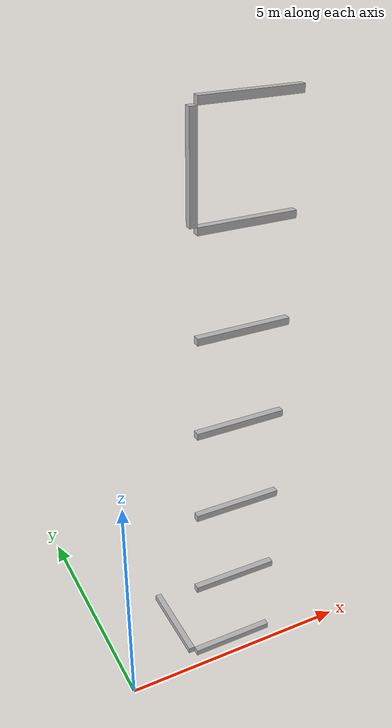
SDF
<sdf version="1.7">
 <world name="default">
  <model name="orthogonal_747_2.000.15_TS">
   <static>1</static>
   <link name="x_link_0_3_4">
    <inertial>
     <mass>1</mass>
     <inertia>
      <ixx>0.166667</ixx>
      <ixy>0</ixy>
      <ixz>0</ixz>
      <iyy>0.166667</iyy>
      <iyz>0</iyz>
      <izz>0.166667</izz>
     </inertia>
    </inertial>
    <pose>9.675 6.45 1.075 0 -0 0</pose>
    <visual name="visual_0">
     <laser_retro>568</laser_retro>
     <geometry><box><size>2 1e-06 0.15</size></box></geometry>
     <material>
      <script><name>Gazebo/Grey</name><uri>file://media/materials/scripts/gazebo.material</uri></script>
      <shader type="pixel"><normal_map>__default__</normal_map></shader>
      <ambient>0.678 0.498 0.659 1</ambient>
      <diffuse>0.7 0.7 0.7 1</diffuse>
      <specular>0.01 0.01 0.01 1</specular>
      <emissive>0 0 0 1</emissive>
     </material>
     <pose>0 -0.075 0 0 -0 0</pose>
     <transparency>1</transparency>
    </visual>
    <visual name="visual_1">
     <laser_retro>569</laser_retro>
     <geometry><box><size>2 1e-06 0.15</size></box></geometry>
     <material>
      <script><name>Gazebo/Grey</name><uri>file://media/materials/scripts/gazebo.material</uri></script>
      <shader type="pixel"><normal_map>__default__</normal_map></shader>
      <ambient>0.447 0.624 0.812 1</ambient>
      <diffuse>0.7 0.7 0.7 1</diffuse>
      <specular>0.01 0.01 0.01 1</specular>
      <emissive>0 0 0 1</emissive>
     </material>
     <pose>0 0.075 0 0 -0 0</pose>
     <transparency>1</transparency>
    </visual>
    <visual name="visual_2">
     <laser_retro>570</laser_retro>
     <geometry><box><size>2 0.15 1e-06</size></box></geometry>
     <material>
      <script><name>Gazebo/Grey</name><uri>file://media/materials/scripts/gazebo.material</uri></script>
      <shader type="pixel"><normal_map>__default__</normal_map></shader>
      <ambient>0.988 0.686 0.243 1</ambient>
      <diffuse>0.7 0.7 0.7 1</diffuse>
      <specular>0.01 0.01 0.01 1</specular>
      <emissive>0 0 0 1</emissive>
     </material>
     <pose>0 0 -0.075 0 -0 0</pose>
     <transparency>1</transparency>
    </visual>
    <visual name="visual_3">
     <laser_retro>571</laser_retro>
     <geometry><box><size>1e-06 0.15 0.15</size></box></geometry>
     <material>
      <script><name>Gazebo/Grey</name><uri>file://media/materials/scripts/gazebo.material</uri></script>
      <shader type="pixel"><normal_map>__default__</normal_map></shader>
      <ambient>0.988 0.914 0.31 1</ambient>
      <diffuse>0.7 0.7 0.7 1</diffuse>
      <specular>0.01 0.01 0.01 1</specular>
      <emissive>0 0 0 1</emissive>
     </material>
     <pose>1 0 0 0 -0 0</pose>
     <transparency>1</transparency>
    </visual>
    <visual name="visual_4">
     <laser_retro>572</laser_retro>
     <geometry><box><size>2 0.15 1e-06</size></box></geometry>
     <material>
      <script><name>Gazebo/Grey</name><uri>file://media/materials/scripts/gazebo.material</uri></script>
      <shader type="pixel"><normal_map>__default__</normal_map></shader>
      <ambient>0.937 0.161 0.161 1</ambient>
      <diffuse>0.7 0.7 0.7 1</diffuse>
      <specular>0.01 0.01 0.01 1</specular>
      <emissive>0 0 0 1</emissive>
     </material>
     <pose>0 0 0.075 0 -0 0</pose>
     <transparency>1</transparency>
    </visual>
    <visual name="visual_5">
     <laser_retro>573</laser_retro>
     <geometry><box><size>1e-06 0.15 0.15</size></box></geometry>
     <material>
      <script><name>Gazebo/Grey</name><uri>file://media/materials/scripts/gazebo.material</uri></script>
      <shader type="pixel"><normal_map>__default__</normal_map></shader>
      <ambient>0.541 0.886 0.204 1</ambient>
      <diffuse>0.7 0.7 0.7 1</diffuse>
      <specular>0.01 0.01 0.01 1</specular>
      <emissive>0 0 0 1</emissive>
     </material>
     <pose>-1 0 0 0 -0 0</pose>
     <transparency>1</transparency>
    </visual>
    <visual name="visual_texture">
     <geometry><box><size>1.9998 0.149985 0.149985</size></box></geometry>
     <material>
      <script>
       <uri>model://BASE_MODELS/simple_block_v2_textured/materials/scripts</uri>
       <uri>model://BASE_MODELS/simple_block_v2_textured/materials/textures</uri>
       <name>metal</name>
      </script>
     </material>
     <laser_retro>574</laser_retro>
    </visual>
    <collision name="collision">
     <geometry><box><size>2 0.15 0.15</size></box></geometry>
     <surface>
      <friction>
       <ode><mu>1</mu><mu2>1</mu2><fdir1>0 0 0</fdir1><slip1>0</slip1><slip2>0</slip2></ode>
       <torsional>
        <coefficient>1</coefficient>
        <patch_radius>0</patch_radius>
        <surface_radius>0</surface_radius>
        <use_patch_radius>1</use_patch_radius>
        <ode><slip>0</slip></ode>
       </torsional>
      </friction>
      <bounce><restitution_coefficient>0</restitution_coefficient><threshold>1e+06</threshold></bounce>
      <contact>
       <collide_without_contact>0</collide_without_contact>
       <collide_without_contact_bitmask>1</collide_without_contact_bitmask>
       <collide_bitmask>1</collide_bitmask>
       <ode>
        <soft_cfm>0</soft_cfm>
        <soft_erp>0.2</soft_erp>
        <kp>1e+13</kp>
        <kd>1</kd>
        <max_vel>0.01</max_vel>
        <min_depth>0</min_depth>
       </ode>
       <bullet>
        <split_impulse>1</split_impulse>
        <split_impulse_penetration_threshold>-0.01</split_impulse_penetration_threshold>
        <soft_cfm>0</soft_cfm>
        <soft_erp>0.2</soft_erp>
        <kp>1e+13</kp>
        <kd>1</kd>
       </bullet>
      </contact>
     </surface>
    </collision>
   </link>
   <link name="y_link_0_3_4">
    <inertial>
     <mass>1</mass>
     <inertia>
      <ixx>0.166667</ixx>
      <ixy>0</ixy>
      <ixz>0</ixz>
      <iyy>0.166667</iyy>
      <iyz>0</iyz>
      <izz>0.166667</izz>
     </inertia>
    </inertial>
    <pose>8.6 7.525 1.075 0 -0 0</pose>
    <visual name="visual_0">
     <laser_retro>575</laser_retro>
     <geometry><box><size>0.15 1e-06 0.15</size></box></geometry>
     <material>
      <script><name>Gazebo/Grey</name><uri>file://media/materials/scripts/gazebo.material</uri></script>
      <shader type="pixel"><normal_map>__default__</normal_map></shader>
      <ambient>0.678 0.498 0.659 1</ambient>
      <diffuse>0.7 0.7 0.7 1</diffuse>
      <specular>0.01 0.01 0.01 1</specular>
      <emissive>0 0 0 1</emissive>
     </material>
     <pose>0 -1 0 0 -0 0</pose>
     <transparency>1</transparency>
    </visual>
    <visual name="visual_1">
     <laser_retro>576</laser_retro>
     <geometry><box><size>0.15 1e-06 0.15</size></box></geometry>
     <material>
      <script><name>Gazebo/Grey</name><uri>file://media/materials/scripts/gazebo.material</uri></script>
      <shader type="pixel"><normal_map>__default__</normal_map></shader>
      <ambient>0.447 0.624 0.812 1</ambient>
      <diffuse>0.7 0.7 0.7 1</diffuse>
      <specular>0.01 0.01 0.01 1</specular>
      <emissive>0 0 0 1</emissive>
     </material>
     <pose>0 1 0 0 -0 0</pose>
     <transparency>1</transparency>
    </visual>
    <visual name="visual_2">
     <laser_retro>577</laser_retro>
     <geometry><box><size>0.15 2 1e-06</size></box></geometry>
     <material>
      <script><name>Gazebo/Grey</name><uri>file://media/materials/scripts/gazebo.material</uri></script>
      <shader type="pixel"><normal_map>__default__</normal_map></shader>
      <ambient>0.988 0.686 0.243 1</ambient>
      <diffuse>0.7 0.7 0.7 1</diffuse>
      <specular>0.01 0.01 0.01 1</specular>
      <emissive>0 0 0 1</emissive>
     </material>
     <pose>0 0 -0.075 0 -0 0</pose>
     <transparency>1</transparency>
    </visual>
    <visual name="visual_3">
     <laser_retro>578</laser_retro>
     <geometry><box><size>1e-06 2 0.15</size></box></geometry>
     <material>
      <script><name>Gazebo/Grey</name><uri>file://media/materials/scripts/gazebo.material</uri></script>
      <shader type="pixel"><normal_map>__default__</normal_map></shader>
      <ambient>0.988 0.914 0.31 1</ambient>
      <diffuse>0.7 0.7 0.7 1</diffuse>
      <specular>0.01 0.01 0.01 1</specular>
      <emissive>0 0 0 1</emissive>
     </material>
     <pose>0.075 0 0 0 -0 0</pose>
     <transparency>1</transparency>
    </visual>
    <visual name="visual_4">
     <laser_retro>579</laser_retro>
     <geometry><box><size>0.15 2 1e-06</size></box></geometry>
     <material>
      <script><name>Gazebo/Grey</name><uri>file://media/materials/scripts/gazebo.material</uri></script>
      <shader type="pixel"><normal_map>__default__</normal_map></shader>
      <ambient>0.937 0.161 0.161 1</ambient>
      <diffuse>0.7 0.7 0.7 1</diffuse>
      <specular>0.01 0.01 0.01 1</specular>
      <emissive>0 0 0 1</emissive>
     </material>
     <pose>0 0 0.075 0 -0 0</pose>
     <transparency>1</transparency>
    </visual>
    <visual name="visual_5">
     <laser_retro>580</laser_retro>
     <geometry><box><size>1e-06 2 0.15</size></box></geometry>
     <material>
      <script><name>Gazebo/Grey</name><uri>file://media/materials/scripts/gazebo.material</uri></script>
      <shader type="pixel"><normal_map>__default__</normal_map></shader>
      <ambient>0.541 0.886 0.204 1</ambient>
      <diffuse>0.7 0.7 0.7 1</diffuse>
      <specular>0.01 0.01 0.01 1</specular>
      <emissive>0 0 0 1</emissive>
     </material>
     <pose>-0.075 0 0 0 -0 0</pose>
     <transparency>1</transparency>
    </visual>
    <visual name="visual_texture">
     <geometry><box><size>0.149985 1.9998 0.149985</size></box></geometry>
     <material>
      <script>
       <uri>model://BASE_MODELS/simple_block_v2_textured/materials/scripts</uri>
       <uri>model://BASE_MODELS/simple_block_v2_textured/materials/textures</uri>
       <name>metal</name>
      </script>
     </material>
     <laser_retro>581</laser_retro>
    </visual>
    <collision name="collision">
     <geometry><box><size>0.15 2 0.15</size></box></geometry>
     <surface>
      <friction>
       <ode><mu>1</mu><mu2>1</mu2><fdir1>0 0 0</fdir1><slip1>0</slip1><slip2>0</slip2></ode>
       <torsional>
        <coefficient>1</coefficient>
        <patch_radius>0</patch_radius>
        <surface_radius>0</surface_radius>
        <use_patch_radius>1</use_patch_radius>
        <ode><slip>0</slip></ode>
       </torsional>
      </friction>
      <bounce><restitution_coefficient>0</restitution_coefficient><threshold>1e+06</threshold></bounce>
      <contact>
       <collide_without_contact>0</collide_without_contact>
       <collide_without_contact_bitmask>1</collide_without_contact_bitmask>
       <collide_bitmask>1</collide_bitmask>
       <ode>
        <soft_cfm>0</soft_cfm>
        <soft_erp>0.2</soft_erp>
        <kp>1e+13</kp>
        <kd>1</kd>
        <max_vel>0.01</max_vel>
        <min_depth>0</min_depth>
       </ode>
       <bullet>
        <split_impulse>1</split_impulse>
        <split_impulse_penetration_threshold>-0.01</split_impulse_penetration_threshold>
        <soft_cfm>0</soft_cfm>
        <soft_erp>0.2</soft_erp>
        <kp>1e+13</kp>
        <kd>1</kd>
       </bullet>
      </contact>
     </surface>
    </collision>
   </link>
   <link name="x_link_1_3_4">
    <inertial>
     <mass>1</mass>
     <inertia>
      <ixx>0.166667</ixx>
      <ixy>0</ixy>
      <ixz>0</ixz>
      <iyy>0.166667</iyy>
      <iyz>0</iyz>
      <izz>0.166667</izz>
     </inertia>
    </inertial>
    <pose>9.675 6.45 3.225 0 -0 0</pose>
    <visual name="visual_0">
     <laser_retro>1408</laser_retro>
     <geometry><box><size>2 1e-06 0.15</size></box></geometry>
     <material>
      <script><name>Gazebo/Grey</name><uri>file://media/materials/scripts/gazebo.material</uri></script>
      <shader type="pixel"><normal_map>__default__</normal_map></shader>
      <ambient>0.678 0.498 0.659 1</ambient>
      <diffuse>0.7 0.7 0.7 1</diffuse>
      <specular>0.01 0.01 0.01 1</specular>
      <emissive>0 0 0 1</emissive>
     </material>
     <pose>0 -0.075 0 0 -0 0</pose>
     <transparency>1</transparency>
    </visual>
    <visual name="visual_1">
     <laser_retro>1409</laser_retro>
     <geometry><box><size>2 1e-06 0.15</size></box></geometry>
     <material>
      <script><name>Gazebo/Grey</name><uri>file://media/materials/scripts/gazebo.material</uri></script>
      <shader type="pixel"><normal_map>__default__</normal_map></shader>
      <ambient>0.447 0.624 0.812 1</ambient>
      <diffuse>0.7 0.7 0.7 1</diffuse>
      <specular>0.01 0.01 0.01 1</specular>
      <emissive>0 0 0 1</emissive>
     </material>
     <pose>0 0.075 0 0 -0 0</pose>
     <transparency>1</transparency>
    </visual>
    <visual name="visual_2">
     <laser_retro>1410</laser_retro>
     <geometry><box><size>2 0.15 1e-06</size></box></geometry>
     <material>
      <script><name>Gazebo/Grey</name><uri>file://media/materials/scripts/gazebo.material</uri></script>
      <shader type="pixel"><normal_map>__default__</normal_map></shader>
      <ambient>0.988 0.686 0.243 1</ambient>
      <diffuse>0.7 0.7 0.7 1</diffuse>
      <specular>0.01 0.01 0.01 1</specular>
      <emissive>0 0 0 1</emissive>
     </material>
     <pose>0 0 -0.075 0 -0 0</pose>
     <transparency>1</transparency>
    </visual>
    <visual name="visual_3">
     <laser_retro>1411</laser_retro>
     <geometry><box><size>1e-06 0.15 0.15</size></box></geometry>
     <material>
      <script><name>Gazebo/Grey</name><uri>file://media/materials/scripts/gazebo.material</uri></script>
      <shader type="pixel"><normal_map>__default__</normal_map></shader>
      <ambient>0.988 0.914 0.31 1</ambient>
      <diffuse>0.7 0.7 0.7 1</diffuse>
      <specular>0.01 0.01 0.01 1</specular>
      <emissive>0 0 0 1</emissive>
     </material>
     <pose>1 0 0 0 -0 0</pose>
     <transparency>1</transparency>
    </visual>
    <visual name="visual_4">
     <laser_retro>1412</laser_retro>
     <geometry><box><size>2 0.15 1e-06</size></box></geometry>
     <material>
      <script><name>Gazebo/Grey</name><uri>file://media/materials/scripts/gazebo.material</uri></script>
      <shader type="pixel"><normal_map>__default__</normal_map></shader>
      <ambient>0.937 0.161 0.161 1</ambient>
      <diffuse>0.7 0.7 0.7 1</diffuse>
      <specular>0.01 0.01 0.01 1</specular>
      <emissive>0 0 0 1</emissive>
     </material>
     <pose>0 0 0.075 0 -0 0</pose>
     <transparency>1</transparency>
    </visual>
    <visual name="visual_5">
     <laser_retro>1413</laser_retro>
     <geometry><box><size>1e-06 0.15 0.15</size></box></geometry>
     <material>
      <script><name>Gazebo/Grey</name><uri>file://media/materials/scripts/gazebo.material</uri></script>
      <shader type="pixel"><normal_map>__default__</normal_map></shader>
      <ambient>0.541 0.886 0.204 1</ambient>
      <diffuse>0.7 0.7 0.7 1</diffuse>
      <specular>0.01 0.01 0.01 1</specular>
      <emissive>0 0 0 1</emissive>
     </material>
     <pose>-1 0 0 0 -0 0</pose>
     <transparency>1</transparency>
    </visual>
    <visual name="visual_texture">
     <geometry><box><size>1.9998 0.149985 0.149985</size></box></geometry>
     <material>
      <script>
       <uri>model://BASE_MODELS/simple_block_v2_textured/materials/scripts</uri>
       <uri>model://BASE_MODELS/simple_block_v2_textured/materials/textures</uri>
       <name>metal</name>
      </script>
     </material>
     <laser_retro>1414</laser_retro>
    </visual>
    <collision name="collision">
     <geometry><box><size>2 0.15 0.15</size></box></geometry>
     <surface>
      <friction>
       <ode><mu>1</mu><mu2>1</mu2><fdir1>0 0 0</fdir1><slip1>0</slip1><slip2>0</slip2></ode>
       <torsional>
        <coefficient>1</coefficient>
        <patch_radius>0</patch_radius>
        <surface_radius>0</surface_radius>
        <use_patch_radius>1</use_patch_radius>
        <ode><slip>0</slip></ode>
       </torsional>
      </friction>
      <bounce><restitution_coefficient>0</restitution_coefficient><threshold>1e+06</threshold></bounce>
      <contact>
       <collide_without_contact>0</collide_without_contact>
       <collide_without_contact_bitmask>1</collide_without_contact_bitmask>
       <collide_bitmask>1</collide_bitmask>
       <ode>
        <soft_cfm>0</soft_cfm>
        <soft_erp>0.2</soft_erp>
        <kp>1e+13</kp>
        <kd>1</kd>
        <max_vel>0.01</max_vel>
        <min_depth>0</min_depth>
       </ode>
       <bullet>
        <split_impulse>1</split_impulse>
        <split_impulse_penetration_threshold>-0.01</split_impulse_penetration_threshold>
        <soft_cfm>0</soft_cfm>
        <soft_erp>0.2</soft_erp>
        <kp>1e+13</kp>
        <kd>1</kd>
       </bullet>
      </contact>
     </surface>
    </collision>
   </link>
   <link name="x_link_2_3_4">
    <inertial>
     <mass>1</mass>
     <inertia>
      <ixx>0.166667</ixx>
      <ixy>0</ixy>
      <ixz>0</ixz>
      <iyy>0.166667</iyy>
      <iyz>0</iyz>
      <izz>0.166667</izz>
     </inertia>
    </inertial>
    <pose>9.675 6.45 5.375 0 -0 0</pose>
    <visual name="visual_0">
     <laser_retro>2311</laser_retro>
     <geometry><box><size>2 1e-06 0.15</size></box></geometry>
     <material>
      <script><name>Gazebo/Grey</name><uri>file://media/materials/scripts/gazebo.material</uri></script>
      <shader type="pixel"><normal_map>__default__</normal_map></shader>
      <ambient>0.678 0.498 0.659 1</ambient>
      <diffuse>0.7 0.7 0.7 1</diffuse>
      <specular>0.01 0.01 0.01 1</specular>
      <emissive>0 0 0 1</emissive>
     </material>
     <pose>0 -0.075 0 0 -0 0</pose>
     <transparency>1</transparency>
    </visual>
    <visual name="visual_1">
     <laser_retro>2312</laser_retro>
     <geometry><box><size>2 1e-06 0.15</size></box></geometry>
     <material>
      <script><name>Gazebo/Grey</name><uri>file://media/materials/scripts/gazebo.material</uri></script>
      <shader type="pixel"><normal_map>__default__</normal_map></shader>
      <ambient>0.447 0.624 0.812 1</ambient>
      <diffuse>0.7 0.7 0.7 1</diffuse>
      <specular>0.01 0.01 0.01 1</specular>
      <emissive>0 0 0 1</emissive>
     </material>
     <pose>0 0.075 0 0 -0 0</pose>
     <transparency>1</transparency>
    </visual>
    <visual name="visual_2">
     <laser_retro>2313</laser_retro>
     <geometry><box><size>2 0.15 1e-06</size></box></geometry>
     <material>
      <script><name>Gazebo/Grey</name><uri>file://media/materials/scripts/gazebo.material</uri></script>
      <shader type="pixel"><normal_map>__default__</normal_map></shader>
      <ambient>0.988 0.686 0.243 1</ambient>
      <diffuse>0.7 0.7 0.7 1</diffuse>
      <specular>0.01 0.01 0.01 1</specular>
      <emissive>0 0 0 1</emissive>
     </material>
     <pose>0 0 -0.075 0 -0 0</pose>
     <transparency>1</transparency>
    </visual>
    <visual name="visual_3">
     <laser_retro>2314</laser_retro>
     <geometry><box><size>1e-06 0.15 0.15</size></box></geometry>
     <material>
      <script><name>Gazebo/Grey</name><uri>file://media/materials/scripts/gazebo.material</uri></script>
      <shader type="pixel"><normal_map>__default__</normal_map></shader>
      <ambient>0.988 0.914 0.31 1</ambient>
      <diffuse>0.7 0.7 0.7 1</diffuse>
      <specular>0.01 0.01 0.01 1</specular>
      <emissive>0 0 0 1</emissive>
     </material>
     <pose>1 0 0 0 -0 0</pose>
     <transparency>1</transparency>
    </visual>
    <visual name="visual_4">
     <laser_retro>2315</laser_retro>
     <geometry><box><size>2 0.15 1e-06</size></box></geometry>
     <material>
      <script><name>Gazebo/Grey</name><uri>file://media/materials/scripts/gazebo.material</uri></script>
      <shader type="pixel"><normal_map>__default__</normal_map></shader>
      <ambient>0.937 0.161 0.161 1</ambient>
      <diffuse>0.7 0.7 0.7 1</diffuse>
      <specular>0.01 0.01 0.01 1</specular>
      <emissive>0 0 0 1</emissive>
     </material>
     <pose>0 0 0.075 0 -0 0</pose>
     <transparency>1</transparency>
    </visual>
    <visual name="visual_5">
     <laser_retro>2316</laser_retro>
     <geometry><box><size>1e-06 0.15 0.15</size></box></geometry>
     <material>
      <script><name>Gazebo/Grey</name><uri>file://media/materials/scripts/gazebo.material</uri></script>
      <shader type="pixel"><normal_map>__default__</normal_map></shader>
      <ambient>0.541 0.886 0.204 1</ambient>
      <diffuse>0.7 0.7 0.7 1</diffuse>
      <specular>0.01 0.01 0.01 1</specular>
      <emissive>0 0 0 1</emissive>
     </material>
     <pose>-1 0 0 0 -0 0</pose>
     <transparency>1</transparency>
    </visual>
    <visual name="visual_texture">
     <geometry><box><size>1.9998 0.149985 0.149985</size></box></geometry>
     <material>
      <script>
       <uri>model://BASE_MODELS/simple_block_v2_textured/materials/scripts</uri>
       <uri>model://BASE_MODELS/simple_block_v2_textured/materials/textures</uri>
       <name>metal</name>
      </script>
     </material>
     <laser_retro>2317</laser_retro>
    </visual>
    <collision name="collision">
     <geometry><box><size>2 0.15 0.15</size></box></geometry>
     <surface>
      <friction>
       <ode><mu>1</mu><mu2>1</mu2><fdir1>0 0 0</fdir1><slip1>0</slip1><slip2>0</slip2></ode>
       <torsional>
        <coefficient>1</coefficient>
        <patch_radius>0</patch_radius>
        <surface_radius>0</surface_radius>
        <use_patch_radius>1</use_patch_radius>
        <ode><slip>0</slip></ode>
       </torsional>
      </friction>
      <bounce><restitution_coefficient>0</restitution_coefficient><threshold>1e+06</threshold></bounce>
      <contact>
       <collide_without_contact>0</collide_without_contact>
       <collide_without_contact_bitmask>1</collide_without_contact_bitmask>
       <collide_bitmask>1</collide_bitmask>
       <ode>
        <soft_cfm>0</soft_cfm>
        <soft_erp>0.2</soft_erp>
        <kp>1e+13</kp>
        <kd>1</kd>
        <max_vel>0.01</max_vel>
        <min_depth>0</min_depth>
       </ode>
       <bullet>
        <split_impulse>1</split_impulse>
        <split_impulse_penetration_threshold>-0.01</split_impulse_penetration_threshold>
        <soft_cfm>0</soft_cfm>
        <soft_erp>0.2</soft_erp>
        <kp>1e+13</kp>
        <kd>1</kd>
       </bullet>
      </contact>
     </surface>
    </collision>
   </link>
   <link name="x_link_3_3_4">
    <inertial>
     <mass>1</mass>
     <inertia>
      <ixx>0.166667</ixx>
      <ixy>0</ixy>
      <ixz>0</ixz>
      <iyy>0.166667</iyy>
      <iyz>0</iyz>
      <izz>0.166667</izz>
     </inertia>
    </inertial>
    <pose>9.675 6.45 7.525 0 -0 0</pose>
    <visual name="visual_0">
     <laser_retro>3214</laser_retro>
     <geometry><box><size>2 1e-06 0.15</size></box></geometry>
     <material>
      <script><name>Gazebo/Grey</name><uri>file://media/materials/scripts/gazebo.material</uri></script>
      <shader type="pixel"><normal_map>__default__</normal_map></shader>
      <ambient>0.678 0.498 0.659 1</ambient>
      <diffuse>0.7 0.7 0.7 1</diffuse>
      <specular>0.01 0.01 0.01 1</specular>
      <emissive>0 0 0 1</emissive>
     </material>
     <pose>0 -0.075 0 0 -0 0</pose>
     <transparency>1</transparency>
    </visual>
    <visual name="visual_1">
     <laser_retro>3215</laser_retro>
     <geometry><box><size>2 1e-06 0.15</size></box></geometry>
     <material>
      <script><name>Gazebo/Grey</name><uri>file://media/materials/scripts/gazebo.material</uri></script>
      <shader type="pixel"><normal_map>__default__</normal_map></shader>
      <ambient>0.447 0.624 0.812 1</ambient>
      <diffuse>0.7 0.7 0.7 1</diffuse>
      <specular>0.01 0.01 0.01 1</specular>
      <emissive>0 0 0 1</emissive>
     </material>
     <pose>0 0.075 0 0 -0 0</pose>
     <transparency>1</transparency>
    </visual>
    <visual name="visual_2">
     <laser_retro>3216</laser_retro>
     <geometry><box><size>2 0.15 1e-06</size></box></geometry>
     <material>
      <script><name>Gazebo/Grey</name><uri>file://media/materials/scripts/gazebo.material</uri></script>
      <shader type="pixel"><normal_map>__default__</normal_map></shader>
      <ambient>0.988 0.686 0.243 1</ambient>
      <diffuse>0.7 0.7 0.7 1</diffuse>
      <specular>0.01 0.01 0.01 1</specular>
      <emissive>0 0 0 1</emissive>
     </material>
     <pose>0 0 -0.075 0 -0 0</pose>
     <transparency>1</transparency>
    </visual>
    <visual name="visual_3">
     <laser_retro>3217</laser_retro>
     <geometry><box><size>1e-06 0.15 0.15</size></box></geometry>
     <material>
      <script><name>Gazebo/Grey</name><uri>file://media/materials/scripts/gazebo.material</uri></script>
      <shader type="pixel"><normal_map>__default__</normal_map></shader>
      <ambient>0.988 0.914 0.31 1</ambient>
      <diffuse>0.7 0.7 0.7 1</diffuse>
      <specular>0.01 0.01 0.01 1</specular>
      <emissive>0 0 0 1</emissive>
     </material>
     <pose>1 0 0 0 -0 0</pose>
     <transparency>1</transparency>
    </visual>
    <visual name="visual_4">
     <laser_retro>3218</laser_retro>
     <geometry><box><size>2 0.15 1e-06</size></box></geometry>
     <material>
      <script><name>Gazebo/Grey</name><uri>file://media/materials/scripts/gazebo.material</uri></script>
      <shader type="pixel"><normal_map>__default__</normal_map></shader>
      <ambient>0.937 0.161 0.161 1</ambient>
      <diffuse>0.7 0.7 0.7 1</diffuse>
      <specular>0.01 0.01 0.01 1</specular>
      <emissive>0 0 0 1</emissive>
     </material>
     <pose>0 0 0.075 0 -0 0</pose>
     <transparency>1</transparency>
    </visual>
    <visual name="visual_5">
     <laser_retro>3219</laser_retro>
     <geometry><box><size>1e-06 0.15 0.15</size></box></geometry>
     <material>
      <script><name>Gazebo/Grey</name><uri>file://media/materials/scripts/gazebo.material</uri></script>
      <shader type="pixel"><normal_map>__default__</normal_map></shader>
      <ambient>0.541 0.886 0.204 1</ambient>
      <diffuse>0.7 0.7 0.7 1</diffuse>
      <specular>0.01 0.01 0.01 1</specular>
      <emissive>0 0 0 1</emissive>
     </material>
     <pose>-1 0 0 0 -0 0</pose>
     <transparency>1</transparency>
    </visual>
    <visual name="visual_texture">
     <geometry><box><size>1.9998 0.149985 0.149985</size></box></geometry>
     <material>
      <script>
       <uri>model://BASE_MODELS/simple_block_v2_textured/materials/scripts</uri>
       <uri>model://BASE_MODELS/simple_block_v2_textured/materials/textures</uri>
       <name>metal</name>
      </script>
     </material>
     <laser_retro>3220</laser_retro>
    </visual>
    <collision name="collision">
     <geometry><box><size>2 0.15 0.15</size></box></geometry>
     <surface>
      <friction>
       <ode><mu>1</mu><mu2>1</mu2><fdir1>0 0 0</fdir1><slip1>0</slip1><slip2>0</slip2></ode>
       <torsional>
        <coefficient>1</coefficient>
        <patch_radius>0</patch_radius>
        <surface_radius>0</surface_radius>
        <use_patch_radius>1</use_patch_radius>
        <ode><slip>0</slip></ode>
       </torsional>
      </friction>
      <bounce><restitution_coefficient>0</restitution_coefficient><threshold>1e+06</threshold></bounce>
      <contact>
       <collide_without_contact>0</collide_without_contact>
       <collide_without_contact_bitmask>1</collide_without_contact_bitmask>
       <collide_bitmask>1</collide_bitmask>
       <ode>
        <soft_cfm>0</soft_cfm>
        <soft_erp>0.2</soft_erp>
        <kp>1e+13</kp>
        <kd>1</kd>
        <max_vel>0.01</max_vel>
        <min_depth>0</min_depth>
       </ode>
       <bullet>
        <split_impulse>1</split_impulse>
        <split_impulse_penetration_threshold>-0.01</split_impulse_penetration_threshold>
        <soft_cfm>0</soft_cfm>
        <soft_erp>0.2</soft_erp>
        <kp>1e+13</kp>
        <kd>1</kd>
       </bullet>
      </contact>
     </surface>
    </collision>
   </link>
   <link name="x_link_4_3_4">
    <inertial>
     <mass>1</mass>
     <inertia>
      <ixx>0.166667</ixx>
      <ixy>0</ixy>
      <ixz>0</ixz>
      <iyy>0.166667</iyy>
      <iyz>0</iyz>
      <izz>0.166667</izz>
     </inertia>
    </inertial>
    <pose>9.675 6.45 9.675 0 -0 0</pose>
    <visual name="visual_0">
     <laser_retro>4117</laser_retro>
     <geometry><box><size>2 1e-06 0.15</size></box></geometry>
     <material>
      <script><name>Gazebo/Grey</name><uri>file://media/materials/scripts/gazebo.material</uri></script>
      <shader type="pixel"><normal_map>__default__</normal_map></shader>
      <ambient>0.678 0.498 0.659 1</ambient>
      <diffuse>0.7 0.7 0.7 1</diffuse>
      <specular>0.01 0.01 0.01 1</specular>
      <emissive>0 0 0 1</emissive>
     </material>
     <pose>0 -0.075 0 0 -0 0</pose>
     <transparency>1</transparency>
    </visual>
    <visual name="visual_1">
     <laser_retro>4118</laser_retro>
     <geometry><box><size>2 1e-06 0.15</size></box></geometry>
     <material>
      <script><name>Gazebo/Grey</name><uri>file://media/materials/scripts/gazebo.material</uri></script>
      <shader type="pixel"><normal_map>__default__</normal_map></shader>
      <ambient>0.447 0.624 0.812 1</ambient>
      <diffuse>0.7 0.7 0.7 1</diffuse>
      <specular>0.01 0.01 0.01 1</specular>
      <emissive>0 0 0 1</emissive>
     </material>
     <pose>0 0.075 0 0 -0 0</pose>
     <transparency>1</transparency>
    </visual>
    <visual name="visual_2">
     <laser_retro>4119</laser_retro>
     <geometry><box><size>2 0.15 1e-06</size></box></geometry>
     <material>
      <script><name>Gazebo/Grey</name><uri>file://media/materials/scripts/gazebo.material</uri></script>
      <shader type="pixel"><normal_map>__default__</normal_map></shader>
      <ambient>0.988 0.686 0.243 1</ambient>
      <diffuse>0.7 0.7 0.7 1</diffuse>
      <specular>0.01 0.01 0.01 1</specular>
      <emissive>0 0 0 1</emissive>
     </material>
     <pose>0 0 -0.075 0 -0 0</pose>
     <transparency>1</transparency>
    </visual>
    <visual name="visual_3">
     <laser_retro>4120</laser_retro>
     <geometry><box><size>1e-06 0.15 0.15</size></box></geometry>
     <material>
      <script><name>Gazebo/Grey</name><uri>file://media/materials/scripts/gazebo.material</uri></script>
      <shader type="pixel"><normal_map>__default__</normal_map></shader>
      <ambient>0.988 0.914 0.31 1</ambient>
      <diffuse>0.7 0.7 0.7 1</diffuse>
      <specular>0.01 0.01 0.01 1</specular>
      <emissive>0 0 0 1</emissive>
     </material>
     <pose>1 0 0 0 -0 0</pose>
     <transparency>1</transparency>
    </visual>
    <visual name="visual_4">
     <laser_retro>4121</laser_retro>
     <geometry><box><size>2 0.15 1e-06</size></box></geometry>
     <material>
      <script><name>Gazebo/Grey</name><uri>file://media/materials/scripts/gazebo.material</uri></script>
      <shader type="pixel"><normal_map>__default__</normal_map></shader>
      <ambient>0.937 0.161 0.161 1</ambient>
      <diffuse>0.7 0.7 0.7 1</diffuse>
      <specular>0.01 0.01 0.01 1</specular>
      <emissive>0 0 0 1</emissive>
     </material>
     <pose>0 0 0.075 0 -0 0</pose>
     <transparency>1</transparency>
    </visual>
    <visual name="visual_5">
     <laser_retro>4122</laser_retro>
     <geometry><box><size>1e-06 0.15 0.15</size></box></geometry>
     <material>
      <script><name>Gazebo/Grey</name><uri>file://media/materials/scripts/gazebo.material</uri></script>
      <shader type="pixel"><normal_map>__default__</normal_map></shader>
      <ambient>0.541 0.886 0.204 1</ambient>
      <diffuse>0.7 0.7 0.7 1</diffuse>
      <specular>0.01 0.01 0.01 1</specular>
      <emissive>0 0 0 1</emissive>
     </material>
     <pose>-1 0 0 0 -0 0</pose>
     <transparency>1</transparency>
    </visual>
    <visual name="visual_texture">
     <geometry><box><size>1.9998 0.149985 0.149985</size></box></geometry>
     <material>
      <script>
       <uri>model://BASE_MODELS/simple_block_v2_textured/materials/scripts</uri>
       <uri>model://BASE_MODELS/simple_block_v2_textured/materials/textures</uri>
       <name>metal</name>
      </script>
     </material>
     <laser_retro>4123</laser_retro>
    </visual>
    <collision name="collision">
     <geometry><box><size>2 0.15 0.15</size></box></geometry>
     <surface>
      <friction>
       <ode><mu>1</mu><mu2>1</mu2><fdir1>0 0 0</fdir1><slip1>0</slip1><slip2>0</slip2></ode>
       <torsional>
        <coefficient>1</coefficient>
        <patch_radius>0</patch_radius>
        <surface_radius>0</surface_radius>
        <use_patch_radius>1</use_patch_radius>
        <ode><slip>0</slip></ode>
       </torsional>
      </friction>
      <bounce><restitution_coefficient>0</restitution_coefficient><threshold>1e+06</threshold></bounce>
      <contact>
       <collide_without_contact>0</collide_without_contact>
       <collide_without_contact_bitmask>1</collide_without_contact_bitmask>
       <collide_bitmask>1</collide_bitmask>
       <ode>
        <soft_cfm>0</soft_cfm>
        <soft_erp>0.2</soft_erp>
        <kp>1e+13</kp>
        <kd>1</kd>
        <max_vel>0.01</max_vel>
        <min_depth>0</min_depth>
       </ode>
       <bullet>
        <split_impulse>1</split_impulse>
        <split_impulse_penetration_threshold>-0.01</split_impulse_penetration_threshold>
        <soft_cfm>0</soft_cfm>
        <soft_erp>0.2</soft_erp>
        <kp>1e+13</kp>
        <kd>1</kd>
       </bullet>
      </contact>
     </surface>
    </collision>
   </link>
   <link name="x_link_5_3_4">
    <inertial>
     <mass>1</mass>
     <inertia>
      <ixx>0.166667</ixx>
      <ixy>0</ixy>
      <ixz>0</ixz>
      <iyy>0.166667</iyy>
      <iyz>0</iyz>
      <izz>0.166667</izz>
     </inertia>
    </inertial>
    <pose>9.675 6.45 11.825 0 -0 0</pose>
    <visual name="visual_0">
     <laser_retro>5020</laser_retro>
     <geometry><box><size>2 1e-06 0.15</size></box></geometry>
     <material>
      <script><name>Gazebo/Grey</name><uri>file://media/materials/scripts/gazebo.material</uri></script>
      <shader type="pixel"><normal_map>__default__</normal_map></shader>
      <ambient>0.678 0.498 0.659 1</ambient>
      <diffuse>0.7 0.7 0.7 1</diffuse>
      <specular>0.01 0.01 0.01 1</specular>
      <emissive>0 0 0 1</emissive>
     </material>
     <pose>0 -0.075 0 0 -0 0</pose>
     <transparency>1</transparency>
    </visual>
    <visual name="visual_1">
     <laser_retro>5021</laser_retro>
     <geometry><box><size>2 1e-06 0.15</size></box></geometry>
     <material>
      <script><name>Gazebo/Grey</name><uri>file://media/materials/scripts/gazebo.material</uri></script>
      <shader type="pixel"><normal_map>__default__</normal_map></shader>
      <ambient>0.447 0.624 0.812 1</ambient>
      <diffuse>0.7 0.7 0.7 1</diffuse>
      <specular>0.01 0.01 0.01 1</specular>
      <emissive>0 0 0 1</emissive>
     </material>
     <pose>0 0.075 0 0 -0 0</pose>
     <transparency>1</transparency>
    </visual>
    <visual name="visual_2">
     <laser_retro>5022</laser_retro>
     <geometry><box><size>2 0.15 1e-06</size></box></geometry>
     <material>
      <script><name>Gazebo/Grey</name><uri>file://media/materials/scripts/gazebo.material</uri></script>
      <shader type="pixel"><normal_map>__default__</normal_map></shader>
      <ambient>0.988 0.686 0.243 1</ambient>
      <diffuse>0.7 0.7 0.7 1</diffuse>
      <specular>0.01 0.01 0.01 1</specular>
      <emissive>0 0 0 1</emissive>
     </material>
     <pose>0 0 -0.075 0 -0 0</pose>
     <transparency>1</transparency>
    </visual>
    <visual name="visual_3">
     <laser_retro>5023</laser_retro>
     <geometry><box><size>1e-06 0.15 0.15</size></box></geometry>
     <material>
      <script><name>Gazebo/Grey</name><uri>file://media/materials/scripts/gazebo.material</uri></script>
      <shader type="pixel"><normal_map>__default__</normal_map></shader>
      <ambient>0.988 0.914 0.31 1</ambient>
      <diffuse>0.7 0.7 0.7 1</diffuse>
      <specular>0.01 0.01 0.01 1</specular>
      <emissive>0 0 0 1</emissive>
     </material>
     <pose>1 0 0 0 -0 0</pose>
     <transparency>1</transparency>
    </visual>
    <visual name="visual_4">
     <laser_retro>5024</laser_retro>
     <geometry><box><size>2 0.15 1e-06</size></box></geometry>
     <material>
      <script><name>Gazebo/Grey</name><uri>file://media/materials/scripts/gazebo.material</uri></script>
      <shader type="pixel"><normal_map>__default__</normal_map></shader>
      <ambient>0.937 0.161 0.161 1</ambient>
      <diffuse>0.7 0.7 0.7 1</diffuse>
      <specular>0.01 0.01 0.01 1</specular>
      <emissive>0 0 0 1</emissive>
     </material>
     <pose>0 0 0.075 0 -0 0</pose>
     <transparency>1</transparency>
    </visual>
    <visual name="visual_5">
     <laser_retro>5025</laser_retro>
     <geometry><box><size>1e-06 0.15 0.15</size></box></geometry>
     <material>
      <script><name>Gazebo/Grey</name><uri>file://media/materials/scripts/gazebo.material</uri></script>
      <shader type="pixel"><normal_map>__default__</normal_map></shader>
      <ambient>0.541 0.886 0.204 1</ambient>
      <diffuse>0.7 0.7 0.7 1</diffuse>
      <specular>0.01 0.01 0.01 1</specular>
      <emissive>0 0 0 1</emissive>
     </material>
     <pose>-1 0 0 0 -0 0</pose>
     <transparency>1</transparency>
    </visual>
    <visual name="visual_texture">
     <geometry><box><size>1.9998 0.149985 0.149985</size></box></geometry>
     <material>
      <script>
       <uri>model://BASE_MODELS/simple_block_v2_textured/materials/scripts</uri>
       <uri>model://BASE_MODELS/simple_block_v2_textured/materials/textures</uri>
       <name>metal</name>
      </script>
     </material>
     <laser_retro>5026</laser_retro>
    </visual>
    <collision name="collision">
     <geometry><box><size>2 0.15 0.15</size></box></geometry>
     <surface>
      <friction>
       <ode><mu>1</mu><mu2>1</mu2><fdir1>0 0 0</fdir1><slip1>0</slip1><slip2>0</slip2></ode>
       <torsional>
        <coefficient>1</coefficient>
        <patch_radius>0</patch_radius>
        <surface_radius>0</surface_radius>
        <use_patch_radius>1</use_patch_radius>
        <ode><slip>0</slip></ode>
       </torsional>
      </friction>
      <bounce><restitution_coefficient>0</restitution_coefficient><threshold>1e+06</threshold></bounce>
      <contact>
       <collide_without_contact>0</collide_without_contact>
       <collide_without_contact_bitmask>1</collide_without_contact_bitmask>
       <collide_bitmask>1</collide_bitmask>
       <ode>
        <soft_cfm>0</soft_cfm>
        <soft_erp>0.2</soft_erp>
        <kp>1e+13</kp>
        <kd>1</kd>
        <max_vel>0.01</max_vel>
        <min_depth>0</min_depth>
       </ode>
       <bullet>
        <split_impulse>1</split_impulse>
        <split_impulse_penetration_threshold>-0.01</split_impulse_penetration_threshold>
        <soft_cfm>0</soft_cfm>
        <soft_erp>0.2</soft_erp>
        <kp>1e+13</kp>
        <kd>1</kd>
       </bullet>
      </contact>
     </surface>
    </collision>
   </link>
   <link name="x_link_6_3_4">
    <inertial>
     <mass>1</mass>
     <inertia>
      <ixx>0.166667</ixx>
      <ixy>0</ixy>
      <ixz>0</ixz>
      <iyy>0.166667</iyy>
      <iyz>0</iyz>
      <izz>0.166667</izz>
     </inertia>
    </inertial>
    <pose>9.675 6.45 13.975 0 -0 0</pose>
    <visual name="visual_0">
     <laser_retro>6028</laser_retro>
     <geometry><box><size>2 1e-06 0.15</size></box></geometry>
     <material>
      <script><name>Gazebo/Grey</name><uri>file://media/materials/scripts/gazebo.material</uri></script>
      <shader type="pixel"><normal_map>__default__</normal_map></shader>
      <ambient>0.678 0.498 0.659 1</ambient>
      <diffuse>0.7 0.7 0.7 1</diffuse>
      <specular>0.01 0.01 0.01 1</specular>
      <emissive>0 0 0 1</emissive>
     </material>
     <pose>0 -0.075 0 0 -0 0</pose>
     <transparency>1</transparency>
    </visual>
    <visual name="visual_1">
     <laser_retro>6029</laser_retro>
     <geometry><box><size>2 1e-06 0.15</size></box></geometry>
     <material>
      <script><name>Gazebo/Grey</name><uri>file://media/materials/scripts/gazebo.material</uri></script>
      <shader type="pixel"><normal_map>__default__</normal_map></shader>
      <ambient>0.447 0.624 0.812 1</ambient>
      <diffuse>0.7 0.7 0.7 1</diffuse>
      <specular>0.01 0.01 0.01 1</specular>
      <emissive>0 0 0 1</emissive>
     </material>
     <pose>0 0.075 0 0 -0 0</pose>
     <transparency>1</transparency>
    </visual>
    <visual name="visual_2">
     <laser_retro>6030</laser_retro>
     <geometry><box><size>2 0.15 1e-06</size></box></geometry>
     <material>
      <script><name>Gazebo/Grey</name><uri>file://media/materials/scripts/gazebo.material</uri></script>
      <shader type="pixel"><normal_map>__default__</normal_map></shader>
      <ambient>0.988 0.686 0.243 1</ambient>
      <diffuse>0.7 0.7 0.7 1</diffuse>
      <specular>0.01 0.01 0.01 1</specular>
      <emissive>0 0 0 1</emissive>
     </material>
     <pose>0 0 -0.075 0 -0 0</pose>
     <transparency>1</transparency>
    </visual>
    <visual name="visual_3">
     <laser_retro>6031</laser_retro>
     <geometry><box><size>1e-06 0.15 0.15</size></box></geometry>
     <material>
      <script><name>Gazebo/Grey</name><uri>file://media/materials/scripts/gazebo.material</uri></script>
      <shader type="pixel"><normal_map>__default__</normal_map></shader>
      <ambient>0.988 0.914 0.31 1</ambient>
      <diffuse>0.7 0.7 0.7 1</diffuse>
      <specular>0.01 0.01 0.01 1</specular>
      <emissive>0 0 0 1</emissive>
     </material>
     <pose>1 0 0 0 -0 0</pose>
     <transparency>1</transparency>
    </visual>
    <visual name="visual_4">
     <laser_retro>6032</laser_retro>
     <geometry><box><size>2 0.15 1e-06</size></box></geometry>
     <material>
      <script><name>Gazebo/Grey</name><uri>file://media/materials/scripts/gazebo.material</uri></script>
      <shader type="pixel"><normal_map>__default__</normal_map></shader>
      <ambient>0.937 0.161 0.161 1</ambient>
      <diffuse>0.7 0.7 0.7 1</diffuse>
      <specular>0.01 0.01 0.01 1</specular>
      <emissive>0 0 0 1</emissive>
     </material>
     <pose>0 0 0.075 0 -0 0</pose>
     <transparency>1</transparency>
    </visual>
    <visual name="visual_5">
     <laser_retro>6033</laser_retro>
     <geometry><box><size>1e-06 0.15 0.15</size></box></geometry>
     <material>
      <script><name>Gazebo/Grey</name><uri>file://media/materials/scripts/gazebo.material</uri></script>
      <shader type="pixel"><normal_map>__default__</normal_map></shader>
      <ambient>0.541 0.886 0.204 1</ambient>
      <diffuse>0.7 0.7 0.7 1</diffuse>
      <specular>0.01 0.01 0.01 1</specular>
      <emissive>0 0 0 1</emissive>
     </material>
     <pose>-1 0 0 0 -0 0</pose>
     <transparency>1</transparency>
    </visual>
    <visual name="visual_texture">
     <geometry><box><size>1.9998 0.149985 0.149985</size></box></geometry>
     <material>
      <script>
       <uri>model://BASE_MODELS/simple_block_v2_textured/materials/scripts</uri>
       <uri>model://BASE_MODELS/simple_block_v2_textured/materials/textures</uri>
       <name>metal</name>
      </script>
     </material>
     <laser_retro>6034</laser_retro>
    </visual>
    <collision name="collision">
     <geometry><box><size>2 0.15 0.15</size></box></geometry>
     <surface>
      <friction>
       <ode><mu>1</mu><mu2>1</mu2><fdir1>0 0 0</fdir1><slip1>0</slip1><slip2>0</slip2></ode>
       <torsional>
        <coefficient>1</coefficient>
        <patch_radius>0</patch_radius>
        <surface_radius>0</surface_radius>
        <use_patch_radius>1</use_patch_radius>
        <ode><slip>0</slip></ode>
       </torsional>
      </friction>
      <bounce><restitution_coefficient>0</restitution_coefficient><threshold>1e+06</threshold></bounce>
      <contact>
       <collide_without_contact>0</collide_without_contact>
       <collide_without_contact_bitmask>1</collide_without_contact_bitmask>
       <collide_bitmask>1</collide_bitmask>
       <ode>
        <soft_cfm>0</soft_cfm>
        <soft_erp>0.2</soft_erp>
        <kp>1e+13</kp>
        <kd>1</kd>
        <max_vel>0.01</max_vel>
        <min_depth>0</min_depth>
       </ode>
       <bullet>
        <split_impulse>1</split_impulse>
        <split_impulse_penetration_threshold>-0.01</split_impulse_penetration_threshold>
        <soft_cfm>0</soft_cfm>
        <soft_erp>0.2</soft_erp>
        <kp>1e+13</kp>
        <kd>1</kd>
       </bullet>
      </contact>
     </surface>
    </collision>
   </link>
   <link name="z_link_6_3_4">
    <inertial>
     <mass>1</mass>
     <inertia>
      <ixx>0.166667</ixx>
      <ixy>0</ixy>
      <ixz>0</ixz>
      <iyy>0.166667</iyy>
      <iyz>0</iyz>
      <izz>0.166667</izz>
     </inertia>
    </inertial>
    <pose>8.6 6.45 12.9 0 -0 0</pose>
    <visual name="visual_0">
     <laser_retro>6049</laser_retro>
     <geometry><box><size>0.15 1e-06 2</size></box></geometry>
     <material>
      <script><name>Gazebo/Grey</name><uri>file://media/materials/scripts/gazebo.material</uri></script>
      <shader type="pixel"><normal_map>__default__</normal_map></shader>
      <ambient>0.678 0.498 0.659 1</ambient>
      <diffuse>0.7 0.7 0.7 1</diffuse>
      <specular>0.01 0.01 0.01 1</specular>
      <emissive>0 0 0 1</emissive>
     </material>
     <pose>0 -0.075 0 0 -0 0</pose>
     <transparency>1</transparency>
    </visual>
    <visual name="visual_1">
     <laser_retro>6050</laser_retro>
     <geometry><box><size>0.15 1e-06 2</size></box></geometry>
     <material>
      <script><name>Gazebo/Grey</name><uri>file://media/materials/scripts/gazebo.material</uri></script>
      <shader type="pixel"><normal_map>__default__</normal_map></shader>
      <ambient>0.447 0.624 0.812 1</ambient>
      <diffuse>0.7 0.7 0.7 1</diffuse>
      <specular>0.01 0.01 0.01 1</specular>
      <emissive>0 0 0 1</emissive>
     </material>
     <pose>0 0.075 0 0 -0 0</pose>
     <transparency>1</transparency>
    </visual>
    <visual name="visual_2">
     <laser_retro>6051</laser_retro>
     <geometry><box><size>0.15 0.15 1e-06</size></box></geometry>
     <material>
      <script><name>Gazebo/Grey</name><uri>file://media/materials/scripts/gazebo.material</uri></script>
      <shader type="pixel"><normal_map>__default__</normal_map></shader>
      <ambient>0.988 0.686 0.243 1</ambient>
      <diffuse>0.7 0.7 0.7 1</diffuse>
      <specular>0.01 0.01 0.01 1</specular>
      <emissive>0 0 0 1</emissive>
     </material>
     <pose>0 0 -1 0 -0 0</pose>
     <transparency>1</transparency>
    </visual>
    <visual name="visual_3">
     <laser_retro>6052</laser_retro>
     <geometry><box><size>1e-06 0.15 2</size></box></geometry>
     <material>
      <script><name>Gazebo/Grey</name><uri>file://media/materials/scripts/gazebo.material</uri></script>
      <shader type="pixel"><normal_map>__default__</normal_map></shader>
      <ambient>0.988 0.914 0.31 1</ambient>
      <diffuse>0.7 0.7 0.7 1</diffuse>
      <specular>0.01 0.01 0.01 1</specular>
      <emissive>0 0 0 1</emissive>
     </material>
     <pose>0.075 0 0 0 -0 0</pose>
     <transparency>1</transparency>
    </visual>
    <visual name="visual_4">
     <laser_retro>6053</laser_retro>
     <geometry><box><size>0.15 0.15 1e-06</size></box></geometry>
     <material>
      <script><name>Gazebo/Grey</name><uri>file://media/materials/scripts/gazebo.material</uri></script>
      <shader type="pixel"><normal_map>__default__</normal_map></shader>
      <ambient>0.937 0.161 0.161 1</ambient>
      <diffuse>0.7 0.7 0.7 1</diffuse>
      <specular>0.01 0.01 0.01 1</specular>
      <emissive>0 0 0 1</emissive>
     </material>
     <pose>0 0 1 0 -0 0</pose>
     <transparency>1</transparency>
    </visual>
    <visual name="visual_5">
     <laser_retro>6054</laser_retro>
     <geometry><box><size>1e-06 0.15 2</size></box></geometry>
     <material>
      <script><name>Gazebo/Grey</name><uri>file://media/materials/scripts/gazebo.material</uri></script>
      <shader type="pixel"><normal_map>__default__</normal_map></shader>
      <ambient>0.541 0.886 0.204 1</ambient>
      <diffuse>0.7 0.7 0.7 1</diffuse>
      <specular>0.01 0.01 0.01 1</specular>
      <emissive>0 0 0 1</emissive>
     </material>
     <pose>-0.075 0 0 0 -0 0</pose>
     <transparency>1</transparency>
    </visual>
    <visual name="visual_texture">
     <geometry><box><size>0.149985 0.149985 1.9998</size></box></geometry>
     <material>
      <script>
       <uri>model://BASE_MODELS/simple_block_v2_textured/materials/scripts</uri>
       <uri>model://BASE_MODELS/simple_block_v2_textured/materials/textures</uri>
       <name>metal</name>
      </script>
     </material>
     <laser_retro>6055</laser_retro>
    </visual>
    <collision name="collision">
     <geometry><box><size>0.15 0.15 2</size></box></geometry>
     <surface>
      <friction>
       <ode><mu>1</mu><mu2>1</mu2><fdir1>0 0 0</fdir1><slip1>0</slip1><slip2>0</slip2></ode>
       <torsional>
        <coefficient>1</coefficient>
        <patch_radius>0</patch_radius>
        <surface_radius>0</surface_radius>
        <use_patch_radius>1</use_patch_radius>
        <ode><slip>0</slip></ode>
       </torsional>
      </friction>
      <bounce><restitution_coefficient>0</restitution_coefficient><threshold>1e+06</threshold></bounce>
      <contact>
       <collide_without_contact>0</collide_without_contact>
       <collide_without_contact_bitmask>1</collide_without_contact_bitmask>
       <collide_bitmask>1</collide_bitmask>
       <ode>
        <soft_cfm>0</soft_cfm>
        <soft_erp>0.2</soft_erp>
        <kp>1e+13</kp>
        <kd>1</kd>
        <max_vel>0.01</max_vel>
        <min_depth>0</min_depth>
       </ode>
       <bullet>
        <split_impulse>1</split_impulse>
        <split_impulse_penetration_threshold>-0.01</split_impulse_penetration_threshold>
        <soft_cfm>0</soft_cfm>
        <soft_erp>0.2</soft_erp>
        <kp>1e+13</kp>
        <kd>1</kd>
       </bullet>
      </contact>
     </surface>
    </collision>
   </link>
   <pose>-6.47624 -5 -2.5 0 -0 0</pose>
  </model>
 </world>
</sdf>
